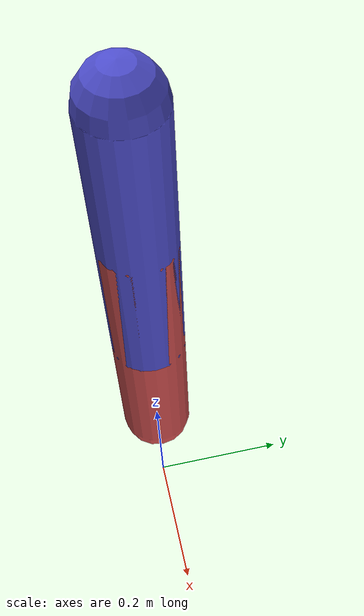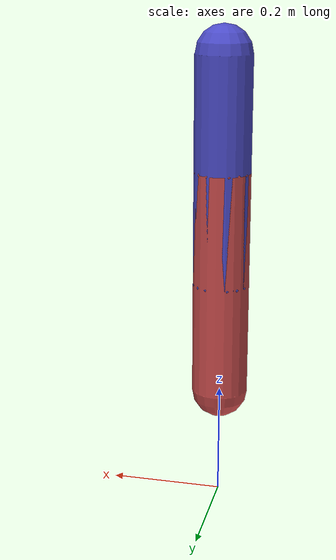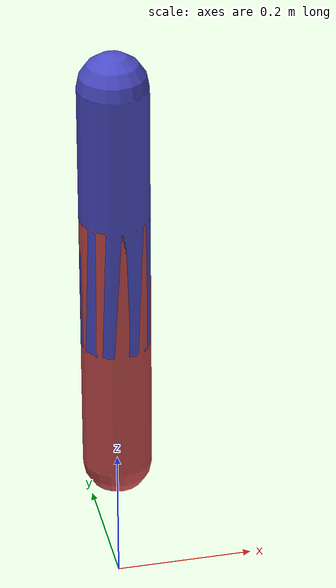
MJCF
<mujoco model="manipulator">
    <compiler angle="radian"/>
    <option gravity="0 0 -9.81"/>

    <worldbody>
        <!-- Base -->
        <body name="base" pos="0 0 0.2">
            <inertial pos="0 0 0" mass="1.0" diaginertia="0.1 0.1 0.1"/>
            <joint name="base_joint" type="free"/>

            <!-- Link 1 -->
            <body name="link1" pos="0 0 0.2">
                <inertial pos="0 0 0" mass="2" diaginertia="0.1 0.1 0.1"/> <!-- Reduced mass -->
                <geom type="capsule" size="0.05 0.2" rgba="0.8 0.3 0.3 1"/>
                <joint name="joint1" type="hinge" axis="0 1 0" range="-180 180"/>

            <!-- Link 2 -->
            <body name="link2" pos="0 0 0.2">
                <inertial pos="0 0 0" mass="1" diaginertia="0.1 0.1 0.1"/> <!-- Reduced mass -->
                <geom type="capsule" size="0.05 0.2" rgba="0.3 0.3 0.8 1"/>
                <joint name="joint2" type="hinge" axis="0 1 0" range="-180 180"/>

                <!-- End effector -->
                <site name="end_effector" pos="0 0 0.0" size="0.02" rgba="0.8 0.8 0.8 1"/>
            </body>
            </body>
        </body>
    </worldbody>

    <!-- Actuators -->
    <actuator>
        <motor joint="joint1" ctrlrange="-1 1" gear="50"/> <!-- Increased gear for more sensitivity -->
        <motor joint="joint2" ctrlrange="-1 1" gear="50"/> <!-- Increased gear for more sensitivity -->
    </actuator>

</mujoco>
